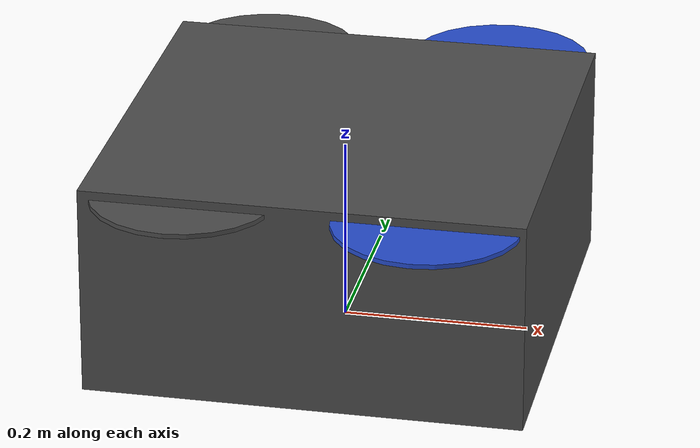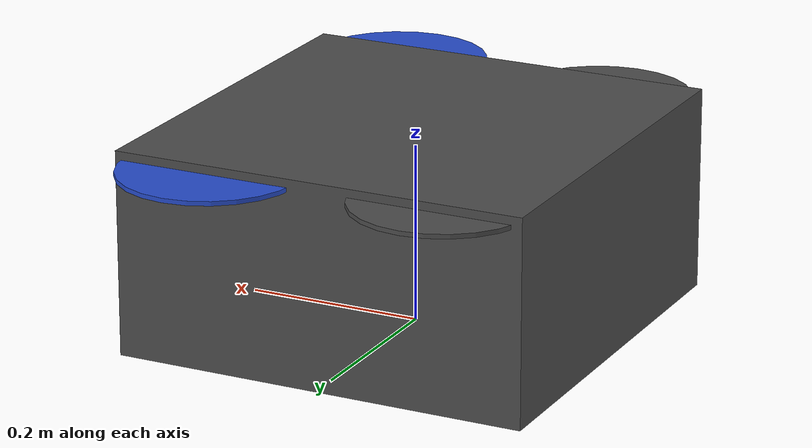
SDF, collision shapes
<?xml version='1.0'?>
<sdf version="1.9">

  <model name="iris_with_stereo">
    <include merge="true">
      <uri>model://iris_with_standoffs</uri>
    </include>

    <plugin filename="gz-sim-joint-state-publisher-system"
      name="gz::sim::systems::JointStatePublisher">
    </plugin>

    <plugin
      filename="gz-sim-odometry-publisher-system"
      name="gz::sim::systems::OdometryPublisher">
      <odom_frame>odom</odom_frame>
      <robot_base_frame>base_link</robot_base_frame>
      <dimensions>3</dimensions>
    </plugin>

    <plugin filename="gz-sim-lift-drag-system"
        name="gz::sim::systems::LiftDrag">
      <a0>0.3</a0>
      <alpha_stall>1.4</alpha_stall>
      <cla>4.2500</cla>
      <cda>0.10</cda>
      <cma>0.0</cma>
      <cla_stall>-0.025</cla_stall>
      <cda_stall>0.0</cda_stall>
      <cma_stall>0.0</cma_stall>
      <area>0.002</area>
      <air_density>1.2041</air_density>
      <cp>0.084 0 0</cp>
      <forward>0 1 0</forward>
      <upward>0 0 1</upward>
      <link_name>rotor_0</link_name>
    </plugin>
    <plugin filename="gz-sim-lift-drag-system"
        name="gz::sim::systems::LiftDrag">
      <a0>0.3</a0>
      <alpha_stall>1.4</alpha_stall>
      <cla>4.2500</cla>
      <cda>0.10</cda>
      <cma>0.0</cma>
      <cla_stall>-0.025</cla_stall>
      <cda_stall>0.0</cda_stall>
      <cma_stall>0.0</cma_stall>
      <area>0.002</area>
      <air_density>1.2041</air_density>
      <cp>-0.084 0 0</cp>
      <forward>0 -1 0</forward>
      <upward>0 0 1</upward>
      <link_name>rotor_0</link_name>
    </plugin>

    <plugin filename="gz-sim-lift-drag-system"
        name="gz::sim::systems::LiftDrag">
      <a0>0.3</a0>
      <alpha_stall>1.4</alpha_stall>
      <cla>4.2500</cla>
      <cda>0.10</cda>
      <cma>0.0</cma>
      <cla_stall>-0.025</cla_stall>
      <cda_stall>0.0</cda_stall>
      <cma_stall>0.0</cma_stall>
      <area>0.002</area>
      <air_density>1.2041</air_density>
      <cp>0.084 0 0</cp>
      <forward>0 1 0</forward>
      <upward>0 0 1</upward>
      <link_name>rotor_1</link_name>
    </plugin>
    <plugin filename="gz-sim-lift-drag-system"
        name="gz::sim::systems::LiftDrag">
      <a0>0.3</a0>
      <alpha_stall>1.4</alpha_stall>
      <cla>4.2500</cla>
      <cda>0.10</cda>
      <cma>0.0</cma>
      <cla_stall>-0.025</cla_stall>
      <cda_stall>0.0</cda_stall>
      <cma_stall>0.0</cma_stall>
      <area>0.002</area>
      <air_density>1.2041</air_density>
      <cp>-0.084 0 0</cp>
      <forward>0 -1 0</forward>
      <upward>0 0 1</upward>
      <link_name>rotor_1</link_name>
    </plugin>

    <plugin filename="gz-sim-lift-drag-system"
        name="gz::sim::systems::LiftDrag">
      <a0>0.3</a0>
      <alpha_stall>1.4</alpha_stall>
      <cla>4.2500</cla>
      <cda>0.10</cda>
      <cma>0.0</cma>
      <cla_stall>-0.025</cla_stall>
      <cda_stall>0.0</cda_stall>
      <cma_stall>0.0</cma_stall>
      <area>0.002</area>
      <air_density>1.2041</air_density>
      <cp>0.084 0 0</cp>
      <forward>0 -1 0</forward>
      <upward>0 0 1</upward>
      <link_name>rotor_2</link_name>
    </plugin>
    <plugin filename="gz-sim-lift-drag-system"
        name="gz::sim::systems::LiftDrag">
      <a0>0.3</a0>
      <alpha_stall>1.4</alpha_stall>
      <cla>4.2500</cla>
      <cda>0.10</cda>
      <cma>0.0</cma>
      <cla_stall>-0.025</cla_stall>
      <cda_stall>0.0</cda_stall>
      <cma_stall>0.0</cma_stall>
      <area>0.002</area>
      <air_density>1.2041</air_density>
      <cp>-0.084 0 0</cp>
      <forward>0 1 0</forward>
      <upward>0 0 1</upward>
      <link_name>rotor_2</link_name>
    </plugin>

    <plugin filename="gz-sim-lift-drag-system"
        name="gz::sim::systems::LiftDrag">
      <a0>0.3</a0>
      <alpha_stall>1.4</alpha_stall>
      <cla>4.2500</cla>
      <cda>0.10</cda>
      <cma>0.0</cma>
      <cla_stall>-0.025</cla_stall>
      <cda_stall>0.0</cda_stall>
      <cma_stall>0.0</cma_stall>
      <area>0.002</area>
      <air_density>1.2041</air_density>
      <cp>0.084 0 0</cp>
      <forward>0 -1 0</forward>
      <upward>0 0 1</upward>
      <link_name>rotor_3</link_name>
    </plugin>
    <plugin filename="gz-sim-lift-drag-system"
        name="gz::sim::systems::LiftDrag">
      <a0>0.3</a0>
      <alpha_stall>1.4</alpha_stall>
      <cla>4.2500</cla>
      <cda>0.10</cda>
      <cma>0.0</cma>
      <cla_stall>-0.025</cla_stall>
      <cda_stall>0.0</cda_stall>
      <cma_stall>0.0</cma_stall>
      <area>0.002</area>
      <air_density>1.2041</air_density>
      <cp>-0.084 0 0</cp>
      <forward>0 1 0</forward>
      <upward>0 0 1</upward>
      <link_name>rotor_3</link_name>
    </plugin>

    <plugin filename="gz-sim-apply-joint-force-system"
      name="gz::sim::systems::ApplyJointForce">
      <joint_name>rotor_0_joint</joint_name>
    </plugin>
    <plugin filename="gz-sim-apply-joint-force-system"
      name="gz::sim::systems::ApplyJointForce">
      <joint_name>rotor_1_joint</joint_name>
    </plugin>
    <plugin filename="gz-sim-apply-joint-force-system"
      name="gz::sim::systems::ApplyJointForce">
      <joint_name>rotor_2_joint</joint_name>
    </plugin>
    <plugin filename="gz-sim-apply-joint-force-system"
      name="gz::sim::systems::ApplyJointForce">
      <joint_name>rotor_3_joint</joint_name>
    </plugin>

    <plugin filename="gz-sim-linearbatteryplugin-system"
      name="gz::sim::systems::LinearBatteryPlugin">
      <battery_name>lipo_3500mAh</battery_name>
      <fix_issue_225>true</fix_issue_225>
      <open_circuit_voltage_constant_coef>12.6</open_circuit_voltage_constant_coef>
      <open_circuit_voltage_linear_coef>-2.7</open_circuit_voltage_linear_coef>
      <capacity>3.5</capacity>
      <voltage>12.6</voltage>
      <initial_charge>3.5</initial_charge>
      <power_load>200.0</power_load>
      <start_draining>false</start_draining>
    </plugin>

    <plugin name="ArduPilotPlugin"
      filename="ArduPilotPlugin">
      <fdm_addr>127.0.0.1</fdm_addr>
      <fdm_port_in>9002</fdm_port_in>
      <connectionTimeoutMaxCount>5</connectionTimeoutMaxCount>
      <lock_step>1</lock_step>
      <no_time_sync>1</no_time_sync>
      <modelXYZToAirplaneXForwardZDown degrees="true">0 0 0 180 0 0</modelXYZToAirplaneXForwardZDown>
      <gazeboXYZToNED degrees="true">0 0 0 180 0 90</gazeboXYZToNED>

      <!-- Sensors -->
      <imuName>imu_link::imu_sensor</imuName>

      <!-- Control channels -->
      <!--
          incoming control command [0, 1]
          so offset it by 0 to get [0, 1]
          and divide max target by 1.
          offset = 0
          multiplier = 838 max rpm / 1 = 838
        -->
      <control channel="0">
        <jointName>rotor_0_joint</jointName>
        <useForce>1</useForce>
        <multiplier>838</multiplier>
        <offset>0</offset>
        <servo_min>1100</servo_min>
        <servo_max>1900</servo_max>
        <type>VELOCITY</type>
        <p_gain>0.20</p_gain>
        <i_gain>0</i_gain>
        <d_gain>0</d_gain>
        <i_max>0</i_max>
        <i_min>0</i_min>
        <cmd_max>2.5</cmd_max>
        <cmd_min>-2.5</cmd_min>
        <controlVelocitySlowdownSim>1</controlVelocitySlowdownSim>
      </control>

      <control channel="1">
        <jointName>rotor_1_joint</jointName>
        <useForce>1</useForce>
        <multiplier>838</multiplier>
        <offset>0</offset>
        <servo_min>1100</servo_min>
        <servo_max>1900</servo_max>
        <type>VELOCITY</type>
        <p_gain>0.20</p_gain>
        <i_gain>0</i_gain>
        <d_gain>0</d_gain>
        <i_max>0</i_max>
        <i_min>0</i_min>
        <cmd_max>2.5</cmd_max>
        <cmd_min>-2.5</cmd_min>
        <controlVelocitySlowdownSim>1</controlVelocitySlowdownSim>
      </control>

      <control channel="2">
        <jointName>rotor_2_joint</jointName>
        <useForce>1</useForce>
        <multiplier>-838</multiplier>
        <offset>0</offset>
        <servo_min>1100</servo_min>
        <servo_max>1900</servo_max>
        <type>VELOCITY</type>
        <p_gain>0.20</p_gain>
        <i_gain>0</i_gain>
        <d_gain>0</d_gain>
        <i_max>0</i_max>
        <i_min>0</i_min>
        <cmd_max>2.5</cmd_max>
        <cmd_min>-2.5</cmd_min>
        <controlVelocitySlowdownSim>1</controlVelocitySlowdownSim>
      </control>

      <control channel="3">
        <jointName>rotor_3_joint</jointName>
        <useForce>1</useForce>
        <multiplier>-838</multiplier>
        <offset>0</offset>
        <servo_min>1100</servo_min>
        <servo_max>1900</servo_max>
        <type>VELOCITY</type>
        <p_gain>0.20</p_gain>
        <i_gain>0</i_gain>
        <d_gain>0</d_gain>
        <i_max>0</i_max>
        <i_min>0</i_min>
        <cmd_max>2.5</cmd_max>
        <cmd_min>-2.5</cmd_min>
        <controlVelocitySlowdownSim>1</controlVelocitySlowdownSim>
      </control>

    </plugin>

    <include merge="true">
      <uri>model://stereo_cam</uri>
      <name>camera_link</name>
      <pose>0.045 0 0.07 0 0 0</pose>
    </include>

    <joint name="camera_joint" type="fixed">
      <parent>base_link</parent>
      <child>camera_link</child>
      <axis>
        <xyz>0 0 1</xyz>
        <limit>
          <lower>0</lower>
          <upper>0</upper>
        </limit>
        <dynamics>
          <damping>1</damping>
        </dynamics>
      </axis>
    </joint>

  </model>

</sdf>

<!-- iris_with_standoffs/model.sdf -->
<sdf version='1.6'>
  <model name='iris'>
    <pose>0 0 0.194923 0 0 0</pose>
    <link name='base_link'>
      <velocity_decay>
        <linear>0.0</linear>
        <angular>0.0</angular>
      </velocity_decay>
      <inertial>
        <pose>0 0 0 0 0 0</pose>
        <mass>1.5</mass>
        <inertia>
          <ixx>0.008</ixx>
          <ixy>0</ixy>
          <ixz>0</ixz>
          <iyy>0.015</iyy>
          <iyz>0</iyz>
          <izz>0.017</izz>
        </inertia>
      </inertial>
      <collision name='base_link_collision'>
        <pose>0 0 -0.08 0 0 0</pose>
        <geometry>
          <box>
            <size>0.47 0.47 0.23</size>
          </box>
        </geometry>
        <surface>
          <contact>
            <ode>
              <max_vel>100.0</max_vel>
              <min_depth>0.001</min_depth>
            </ode>
          </contact>
          <friction>
            <ode>
              <mu>1.0</mu>
              <mu2>1.0</mu2>
            </ode>
          </friction>
        </surface>
      </collision>
      <visual name='base_link_visual'>
        <geometry>
          <mesh>
            <uri>model://../model_source/models/iris_with_standoffs/meshes/iris.dae</uri>
          </mesh>
        </geometry>
        <material>
          <script>
            <name>Gazebo/DarkGrey</name>
          </script>
        </material>
      </visual>

      <visual name='front_left_leg_visual'>
        <pose>0.123 0.22 -0.11 0 0 0</pose>
        <geometry>
          <cylinder>
            <radius>0.005</radius>
            <length>0.17</length>
          </cylinder>
        </geometry>
        <material>
          <script>
            <name>Gazebo/FlatBlack</name>
            <uri>file://media/materials/scripts/gazebo.material</uri>
          </script>
        </material>
      </visual>
      <visual name='front_right_leg_visual'>
        <pose>0.123 -0.22 -0.11 0 0 0</pose>
        <geometry>
          <cylinder>
            <radius>0.005</radius>
            <length>0.17</length>
          </cylinder>
        </geometry>
        <material>
          <script>
            <name>Gazebo/FlatBlack</name>
            <uri>file://media/materials/scripts/gazebo.material</uri>
          </script>
        </material>
      </visual>
      <visual name='rear_left_leg_visual'>
        <pose>-0.140 0.21 -0.11 0 0 0</pose>
        <geometry>
          <cylinder>
            <radius>0.005</radius>
            <length>0.17</length>
          </cylinder>
        </geometry>
        <material>
          <script>
            <name>Gazebo/FlatBlack</name>
            <uri>file://media/materials/scripts/gazebo.material</uri>
          </script>
        </material>
      </visual>
      <visual name='rear_right_leg_visual'>
        <pose>-0.140 -0.21 -0.11 0 0 0</pose>
        <geometry>
          <cylinder>
            <radius>0.005</radius>
            <length>0.17</length>
          </cylinder>
        </geometry>
        <material>
          <script>
            <name>Gazebo/FlatBlack</name>
            <uri>file://media/materials/scripts/gazebo.material</uri>
          </script>
        </material>
      </visual>
    </link>
    <link name='iris/ground_truth/odometry_sensorgt_link'>
      <pose>0 0 0 0 -0 0</pose>
      <inertial>
        <pose>0 0 0 0 -0 0</pose>
        <mass>0.15</mass>
        <inertia>
          <ixx>0.0001</ixx>
          <ixy>0</ixy>
          <ixz>0</ixz>
          <iyy>0.0002</iyy>
          <iyz>0</iyz>
          <izz>0.0002</izz>
        </inertia>
      </inertial>
    </link>
    <joint name='iris/ground_truth/odometry_sensorgt_joint' type='revolute'>
      <child>iris/ground_truth/odometry_sensorgt_link</child>
      <parent>base_link</parent>
      <axis>
        <xyz>0 0 1</xyz>
        <limit>
          <lower>0</lower>
          <upper>0</upper>
          <effort>0</effort>
          <velocity>0</velocity>
        </limit>
        <dynamics>
          <damping>1.0</damping>
        </dynamics>
        <use_parent_model_frame>1</use_parent_model_frame>
      </axis>
      <physics>
        <ode>
          <implicit_spring_damper>1</implicit_spring_damper>
        </ode>
      </physics>
    </joint>
    <link name='iris/imu_link'>
      <inertial>
        <pose>0 0 0 0 0 0</pose>
        <mass>0.15</mass>
        <inertia>
          <ixx>0.00001</ixx>
          <ixy>0</ixy>
          <ixz>0</ixz>
          <iyy>0.00002</iyy>
          <iyz>0</iyz>
          <izz>0.00002</izz>
        </inertia>
      </inertial>
      <sensor name="imu_sensor" type="imu">
        <pose>0 0 0 3.141593 0 0</pose>
        <always_on>1</always_on>
        <update_rate>1000.0</update_rate>
      </sensor>
    </link>
    <joint name='iris/imu_joint' type='revolute'>
      <child>iris/imu_link</child>
      <parent>base_link</parent>
      <axis>
        <xyz>0 0 1</xyz>
        <limit>
          <lower>0</lower>
          <upper>0</upper>
          <effort>0</effort>
          <velocity>0</velocity>
        </limit>
        <dynamics>
          <damping>1.0</damping>
        </dynamics>
        <use_parent_model_frame>1</use_parent_model_frame>
      </axis>
      <physics>
        <ode>
          <implicit_spring_damper>1</implicit_spring_damper>
        </ode>
      </physics>
    </joint>
    <link name='rotor_0'>
      <pose>0.13 -0.22 0.023 0 -0 0</pose>
      <inertial>
        <pose>0 0 0 0 -0 0</pose>
        <mass>0.025</mass>
        <inertia>
          <ixx>9.75e-06</ixx>
          <ixy>0</ixy>
          <ixz>0</ixz>
          <iyy>0.000166704</iyy>
          <iyz>0</iyz>
          <izz>0.000167604</izz>
        </inertia>
      </inertial>
      <collision name='rotor_0_collision'>
        <pose>0 0 0 0 -0 0</pose>
        <geometry>
          <cylinder>
            <length>0.005</length>
            <radius>0.1</radius>
          </cylinder>
        </geometry>
        <surface>
          <contact>
            <ode/>
          </contact>
          <friction>
            <ode/>
          </friction>
        </surface>
      </collision>
      <visual name='rotor_0_visual'>
        <pose>0 0 0 0 -0 0</pose>
        <geometry>
          <mesh>
            <scale>1 1 1</scale>
            <uri>model://../model_source/models/iris_with_standoffs/meshes/iris_prop_ccw.dae</uri>
          </mesh>
        </geometry>
        <material>
          <script>
            <name>Gazebo/Blue</name>
            <uri>__default__</uri>
          </script>
        </material>
      </visual>
      <gravity>1</gravity>
      <velocity_decay/>
      <self_collide>0</self_collide>
    </link>
    <joint name='rotor_0_joint' type='revolute'>
      <child>rotor_0</child>
      <parent>base_link</parent>
      <axis>
        <xyz>0 0 1</xyz>
        <limit>
          <lower>-1e+16</lower>
          <upper>1e+16</upper>
        </limit>
        <dynamics>
          <damping>0.004</damping>
        </dynamics>
        <use_parent_model_frame>1</use_parent_model_frame>
      </axis>
      <physics>
        <ode>
          <implicit_spring_damper>1</implicit_spring_damper>
        </ode>
      </physics>
    </joint>
    <link name='rotor_1'>
      <pose>-0.13 0.2 0.023 0 -0 0</pose>
      <inertial>
        <pose>0 0 0 0 -0 0</pose>
        <mass>0.025</mass>
        <inertia>
          <ixx>9.75e-06</ixx>
          <ixy>0</ixy>
          <ixz>0</ixz>
          <iyy>0.000166704</iyy>
          <iyz>0</iyz>
          <izz>0.000167604</izz>
        </inertia>
      </inertial>
      <collision name='rotor_1_collision'>
        <pose>0 0 0 0 -0 0</pose>
        <geometry>
          <cylinder>
            <length>0.005</length>
            <radius>0.1</radius>
          </cylinder>
        </geometry>
        <surface>
          <contact>
            <ode/>
          </contact>
          <friction>
            <ode/>
          </friction>
        </surface>
      </collision>
      <visual name='rotor_1_visual'>
        <pose>0 0 0 0 -0 0</pose>
        <geometry>
          <mesh>
            <scale>1 1 1</scale>
            <uri>model://../model_source/models/iris_with_standoffs/meshes/iris_prop_ccw.dae</uri>
          </mesh>
        </geometry>
        <material>
          <script>
            <name>Gazebo/DarkGrey</name>
            <uri>__default__</uri>
          </script>
        </material>
      </visual>
      <gravity>1</gravity>
      <velocity_decay/>
      <self_collide>0</self_collide>
    </link>
    <joint name='rotor_1_joint' type='revolute'>
      <child>rotor_1</child>
      <parent>base_link</parent>
      <axis>
        <xyz>0 0 1</xyz>
        <limit>
          <lower>-1e+16</lower>
          <upper>1e+16</upper>
        </limit>
        <dynamics>
          <damping>0.004</damping>
        </dynamics>
        <use_parent_model_frame>1</use_parent_model_frame>
      </axis>
      <physics>
        <ode>
          <implicit_spring_damper>1</implicit_spring_damper>
        </ode>
      </physics>
    </joint>
    <link name='rotor_2'>
      <pose>0.13 0.22 0.023 0 -0 0</pose>
      <inertial>
        <pose>0 0 0 0 -0 0</pose>
        <mass>0.025</mass>
        <inertia>
          <ixx>9.75e-06</ixx>
          <ixy>0</ixy>
          <ixz>0</ixz>
          <iyy>0.000166704</iyy>
          <iyz>0</iyz>
          <izz>0.000167604</izz>
        </inertia>
      </inertial>
      <collision name='rotor_2_collision'>
        <pose>0 0 0 0 -0 0</pose>
        <geometry>
          <cylinder>
            <length>0.005</length>
            <radius>0.1</radius>
          </cylinder>
        </geometry>
        <surface>
          <contact>
            <ode/>
          </contact>
          <friction>
            <ode/>
          </friction>
        </surface>
      </collision>
      <visual name='rotor_2_visual'>
        <pose>0 0 0 0 -0 0</pose>
        <geometry>
          <mesh>
            <scale>1 1 1</scale>
            <uri>model://../model_source/models/iris_with_standoffs/meshes/iris_prop_cw.dae</uri>
          </mesh>
        </geometry>
        <material>
          <script>
            <name>Gazebo/Blue</name>
            <uri>__default__</uri>
          </script>
        </material>
      </visual>
      <gravity>1</gravity>
      <velocity_decay/>
      <self_collide>0</self_collide>
    </link>
    <joint name='rotor_2_joint' type='revolute'>
      <child>rotor_2</child>
      <parent>base_link</parent>
      <axis>
        <xyz>0 0 1</xyz>
        <limit>
          <lower>-1e+16</lower>
          <upper>1e+16</upper>
        </limit>
        <dynamics>
          <damping>0.004</damping>
        </dynamics>
        <use_parent_model_frame>1</use_parent_model_frame>
      </axis>
      <physics>
        <ode>
          <implicit_spring_damper>1</implicit_spring_damper>
        </ode>
      </physics>
    </joint>
    <link name='rotor_3'>
      <pose>-0.13 -0.2 0.023 0 -0 0</pose>
      <inertial>
        <pose>0 0 0 0 -0 0</pose>
        <mass>0.025</mass>
        <inertia>
          <ixx>9.75e-06</ixx>
          <ixy>0</ixy>
          <ixz>0</ixz>
          <iyy>0.000166704</iyy>
          <iyz>0</iyz>
          <izz>0.000167604</izz>
        </inertia>
      </inertial>
      <collision name='rotor_3_collision'>
        <pose>0 0 0 0 -0 0</pose>
        <geometry>
          <cylinder>
            <length>0.005</length>
            <radius>0.1</radius>
          </cylinder>
        </geometry>
        <surface>
          <contact>
            <ode/>
          </contact>
          <friction>
            <ode/>
          </friction>
        </surface>
      </collision>
      <visual name='rotor_3_visual'>
        <pose>0 0 0 0 -0 0</pose>
        <geometry>
          <mesh>
            <scale>1 1 1</scale>
            <uri>model://../model_source/models/iris_with_standoffs/meshes/iris_prop_cw.dae</uri>
          </mesh>
        </geometry>
        <material>
          <script>
            <name>Gazebo/DarkGrey</name>
            <uri>__default__</uri>
          </script>
        </material>
      </visual>
      <gravity>1</gravity>
      <velocity_decay/>
      <self_collide>0</self_collide>
    </link>
    <joint name='rotor_3_joint' type='revolute'>
      <child>rotor_3</child>
      <parent>base_link</parent>
      <axis>
        <xyz>0 0 1</xyz>
        <limit>
          <lower>-1e+16</lower>
          <upper>1e+16</upper>
        </limit>
        <dynamics>
          <damping>0.004</damping>
        </dynamics>
        <use_parent_model_frame>1</use_parent_model_frame>
      </axis>
      <physics>
        <ode>
          <implicit_spring_damper>1</implicit_spring_damper>
        </ode>
      </physics>
    </joint>
    <static>0</static>
  </model>
</sdf>

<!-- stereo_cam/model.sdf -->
<sdf version="1.9">

  <model name="stereo_cam">
    <link name='camera_link'>
      <pose degrees="true">0 0 0 0 0 0</pose>
      <inertial>
        <mass>0.05</mass>
        <inertia>
          <ixx>0.000166667</ixx>
          <iyy>0.000166667</iyy>
          <izz>0.000166667</izz>
        </inertia>
      </inertial>
      <visual name='visual'>
        <pose>0 0 0 0 0 0</pose>
        <geometry>
          <box>
            <size>0.05 0.05 0.05</size>
          </box>
        </geometry>
      </visual>
      <collision name='collision'>
        <pose>0 0 0 0 0 0</pose>
        <geometry>
          <box>
            <size>0.05 0.05 0.05</size>
          </box>
        </geometry>
      </collision>

      <sensor name="rgbd_camera" type="rgbd_camera">
        <gz_frame_id>camera_link</gz_frame_id>
        <pose degrees="true">0 0 0.0 0 0 0</pose>
        <camera>
          <optical_frame_id>camera_link</optical_frame_id>
          <horizontal_fov>1.204277184</horizontal_fov> <!-- 69 deg, RealSense D435 RGB -->
          <image>
            <width>640</width>
            <height>480</height>
            <format>R8G8B8</format>
          </image>
          <clip>
            <near>0.1</near>
            <far>10.0</far>
          </clip>
        </camera>
        <always_on>1</always_on>
        <update_rate>10</update_rate>
        <visualize>1</visualize>
      </sensor>
      <sensor name="camera1" type="camera">
        <gz_frame_id>camera1_link</gz_frame_id>
        <pose degrees="true">0 0.05 0 0 0 0</pose>
        <camera>
          <horizontal_fov>1.204277184</horizontal_fov>
          <image>
            <width>640</width>
            <height>480</height>
            <format>R8G8B8</format>
          </image>
          <clip>
            <near>0.01</near>
            <far>10.0</far>
          </clip>
        </camera>
        <always_on>1</always_on>
        <update_rate>20</update_rate>
        <visualize>1</visualize>
      </sensor>

      <sensor name="camera2" type="camera">
        <gz_frame_id>camera2_link</gz_frame_id>
        <pose degrees="true">0 -0.05 0 0 0 0</pose>
        <camera>
          <horizontal_fov>1.204277184</horizontal_fov>
          <image>
            <width>640</width>
            <height>480</height>
            <format>R8G8B8</format>
          </image>
          <clip>
            <near>0.01</near>
            <far>10.0</far>
          </clip>
        </camera>
        <always_on>1</always_on>
        <update_rate>20</update_rate>
        <visualize>1</visualize>
      </sensor>
    </link>
  </model>

</sdf>
